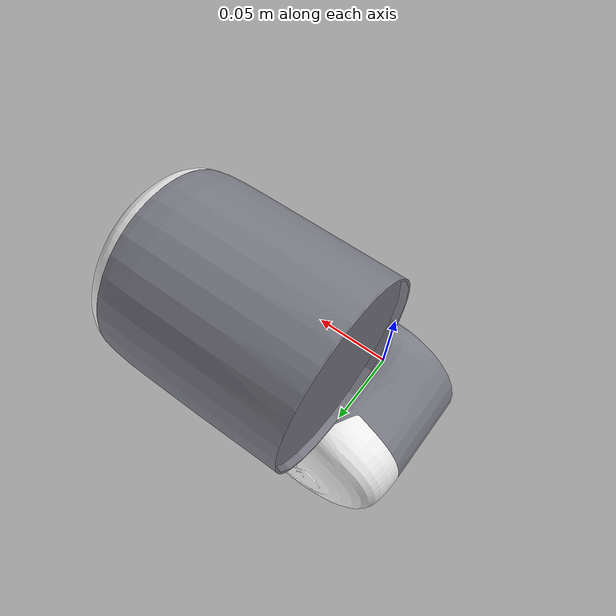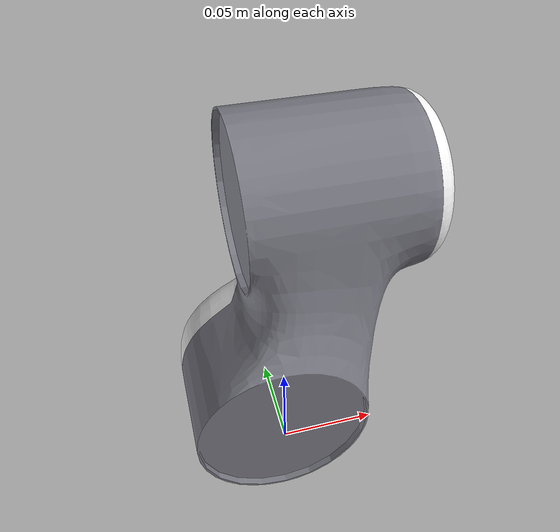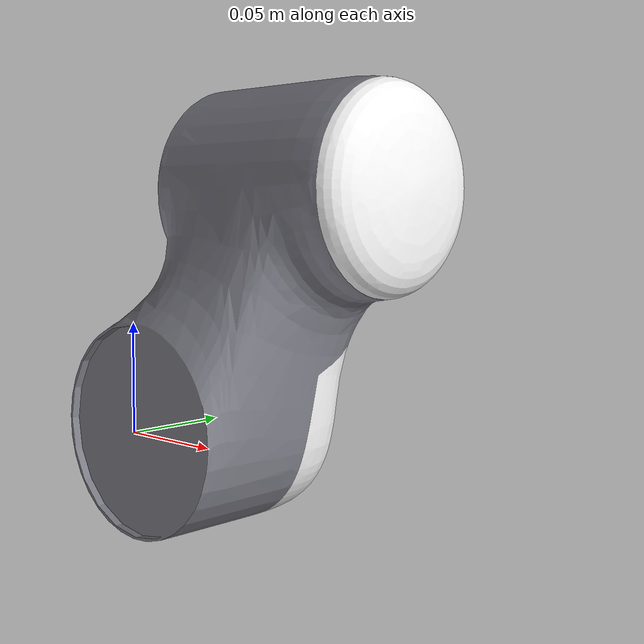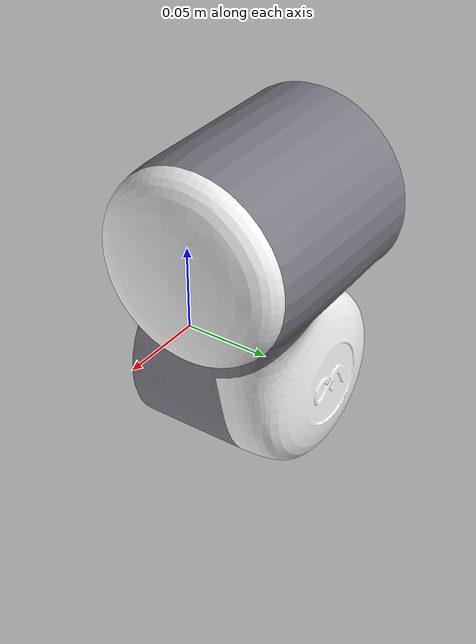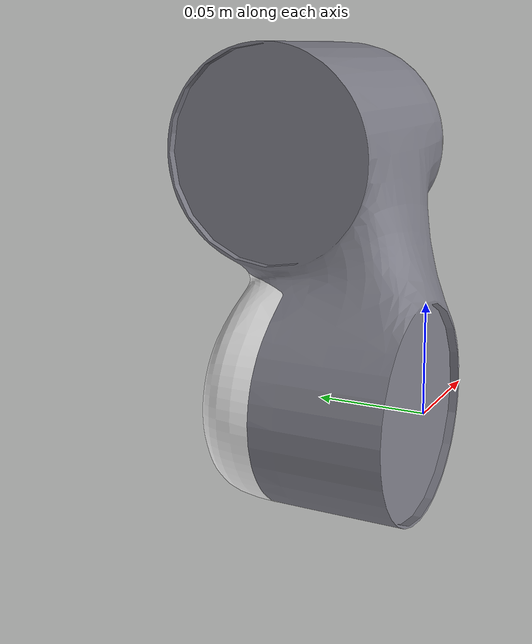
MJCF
<mujoco model="link6">
  <default>
    <default class="visual">
      <geom group="2" type="mesh" contype="0" conaffinity="0"/>
    </default>
    <default class="collision">
      <geom group="3" type="mesh"/>
    </default>
  </default>
  <asset>
    <material name="cover" specular="0.072304" shininess="0.092156872" rgba="0.969921 0.969921 0.969921 1.000000"/>
    <material name="robot" specular="0.600013" shininess="0.015686281" rgba="0.487364 0.487364 0.527718 1.000000"/>
    <mesh file="link6_0.obj"/>
    <mesh file="link6_1.obj"/>
  </asset>
  <worldbody>
    <body name="link6">
      <geom mesh="link6_0" material="robot" class="visual"/>
      <geom mesh="link6_1" material="cover" class="visual"/>
      <geom mesh="link6_0" class="collision"/>
      <geom mesh="link6_1" class="collision"/>
    </body>
  </worldbody>
</mujoco>
